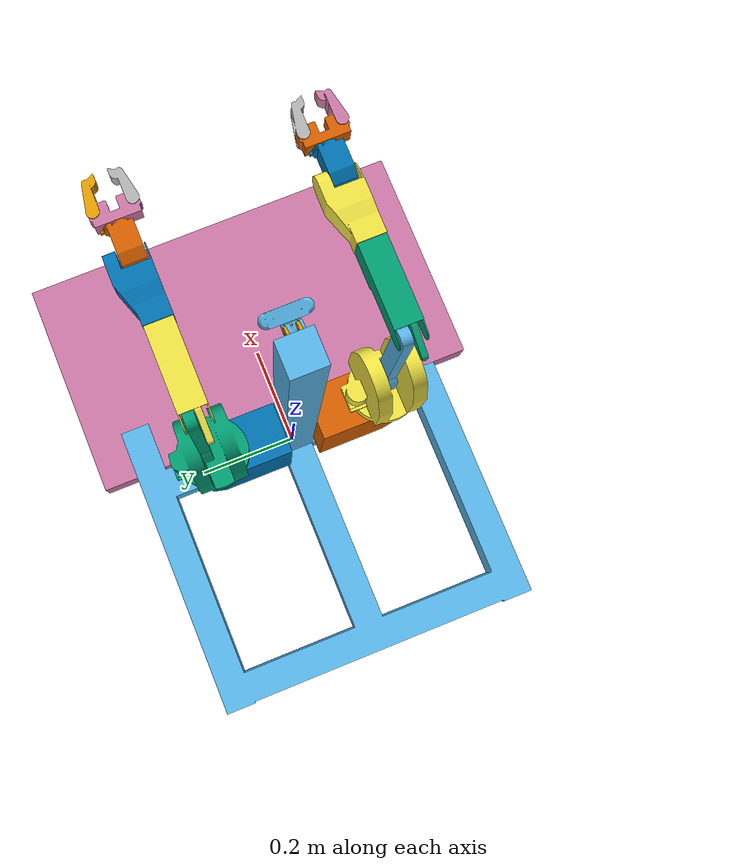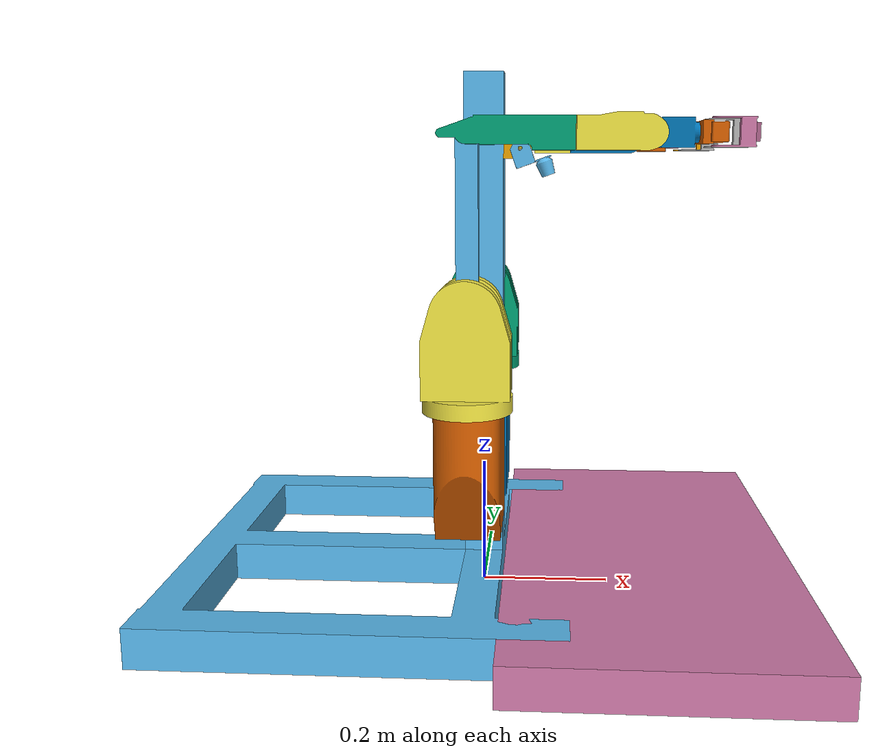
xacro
<?xml version="1.0" ?>
<robot name="kohaku_dualarm" xmlns:xacro="http://www.ros.org/wiki/xacro">

<xacro:property name="camera_angle" value="1.23" />

<link name="world"/>
<joint name="world_to_base_link" type="fixed" >
  <parent link="world" />
  <child link="base_link" />
</joint>

<link name="base_link">
  <inertial>
    <origin xyz="-0.15079905348722558 0.002632253893124613 0.12091351070017117" rpy="0 0 0"/>
    <mass value="129.89853651459157"/>
    <inertia ixx="9.979542" iyy="9.36588" izz="9.520271" ixy="-0.046433" iyz="-0.02707" ixz="-1.764444"/>
  </inertial>
  <visual>
    <origin xyz="0 0 0" rpy="0 0 0"/>
    <geometry>
      <mesh filename="package://kohaku_description/meshes/base_link.stl" scale="0.001 0.001 0.001"/>
    </geometry>
    <material name="_"/>
  </visual>
  <collision>
    <origin xyz="0 0 0" rpy="0 0 0"/>
    <geometry>
      <mesh filename="package://kohaku_description/meshes/base_link.stl" scale="0.001 0.001 0.001"/>
    </geometry>
  </collision>
</link>

<link name="left_upperarm_link">
  <inertial>
    <origin xyz="5.075907070683193e-05 0.0055551687418621265 0.06093355009099832" rpy="0 0 0"/>
    <mass value="1.6464184320412805"/>
    <inertia ixx="0.012435" iyy="0.01254" izz="0.000862" ixy="2e-06" iyz="-0.000385" ixz="5e-06"/>
  </inertial>
  <visual>
    <origin xyz="0.015 -0.16498 -0.502019" rpy="0 0 0"/>
    <geometry>
      <mesh filename="package://kohaku_description/meshes/left_upperarm_link_1.stl" scale="0.001 0.001 0.001"/>
    </geometry>
    <material name="_"/>
  </visual>
  <collision>
    <origin xyz="0.015 -0.16498 -0.502019" rpy="0 0 0"/>
    <geometry>
      <mesh filename="package://kohaku_description/meshes/left_upperarm_link_1.stl" scale="0.001 0.001 0.001"/>
    </geometry>
  </collision>
</link>

<link name="left_forearm_link">
  <inertial>
    <origin xyz="-0.0028629714869261927 -0.0029849490325699057 0.0665229146241868" rpy="0 0 0"/>
    <mass value="0.5147558278242914"/>
    <inertia ixx="0.001435" iyy="0.001418" izz="0.000194" ixy="1e-06" iyz="-5.7e-05" ixz="-4.1e-05"/>
  </inertial>
  <visual>
    <origin xyz="0.015 -0.164945 -0.752019" rpy="0 0 0"/>
    <geometry>
      <mesh filename="package://kohaku_description/meshes/left_forearm_link_1.stl" scale="0.001 0.001 0.001"/>
    </geometry>
    <material name="_"/>
  </visual>
  <collision>
    <origin xyz="0.015 -0.164945 -0.752019" rpy="0 0 0"/>
    <geometry>
      <mesh filename="package://kohaku_description/meshes/left_forearm_link_1.stl" scale="0.001 0.001 0.001"/>
    </geometry>
  </collision>
</link>

<link name="left_wrist_yaw_link">
  <inertial>
    <origin xyz="-0.0012123899494678285 0.00799629493788756 0.05493382214308451" rpy="0 0 0"/>
    <mass value="1.0197481013710548"/>
    <inertia ixx="0.001319" iyy="0.001172" izz="0.000585" ixy="7e-06" iyz="-0.000192" ixz="2.4e-05"/>
  </inertial>
  <visual>
    <origin xyz="0.015 -0.164874 -0.902019" rpy="0 0 0"/>
    <geometry>
      <mesh filename="package://kohaku_description/meshes/left_wrist_yaw_link_1.stl" scale="0.001 0.001 0.001"/>
    </geometry>
    <material name="_"/>
  </visual>
  <collision>
    <origin xyz="0.015 -0.164874 -0.902019" rpy="0 0 0"/>
    <geometry>
      <mesh filename="package://kohaku_description/meshes/left_wrist_yaw_link_1.stl" scale="0.001 0.001 0.001"/>
    </geometry>
  </collision>
</link>

<link name="left_wrist_pitch_link">
  <inertial>
    <origin xyz="4.65267917359076e-05 0.0005212096653225973 0.03002034855665814" rpy="0 0 0"/>
    <mass value="0.3895986537799301"/>
    <inertia ixx="0.000199" iyy="0.000188" izz="0.000103" ixy="-0.0" iyz="-6e-06" ixz="1e-06"/>
  </inertial>
  <visual>
    <origin xyz="0.015 -0.16486 -1.002019" rpy="0 0 0"/>
    <geometry>
      <mesh filename="package://kohaku_description/meshes/left_wrist_pitch_link_1.stl" scale="0.001 0.001 0.001"/>
    </geometry>
    <material name="_"/>
  </visual>
  <collision>
    <origin xyz="0.015 -0.16486 -1.002019" rpy="0 0 0"/>
    <geometry>
      <mesh filename="package://kohaku_description/meshes/left_wrist_pitch_link_1.stl" scale="0.001 0.001 0.001"/>
    </geometry>
  </collision>
</link>

<link name="left_hand_palm_link">
  <inertial>
    <origin xyz="0.0002318570856491807 -6.828401333128231e-05 0.017667823933595006" rpy="0 0 0"/>
    <mass value="0.32135536491616284"/>
    <inertia ixx="0.000221" iyy="5.4e-05" izz="0.000213" ixy="-0.0" iyz="-0.0" ixz="-0.0"/>
  </inertial>
  <visual>
    <origin xyz="0.015 -0.164851 -1.067019" rpy="0 0 0"/>
    <geometry>
      <mesh filename="package://kohaku_description/meshes/left_hand_palm_link_1.stl" scale="0.001 0.001 0.001"/>
    </geometry>
    <material name="_"/>
  </visual>
  <collision>
    <origin xyz="0.015 -0.164851 -1.067019" rpy="0 0 0"/>
    <geometry>
      <mesh filename="package://kohaku_description/meshes/left_hand_palm_link_1.stl" scale="0.001 0.001 0.001"/>
    </geometry>
  </collision>
</link>

<link name="left_r_finger_link">
  <inertial>
    <origin xyz="0.00015745354838760627 0.006862307384075728 0.03618445014614924" rpy="0 0 0"/>
    <mass value="0.07719980680600205"/>
    <inertia ixx="2e-05" iyy="2.8e-05" izz="1.5e-05" ixy="0.0" iyz="-4e-06" ixz="0.0"/>
  </inertial>
  <visual>
    <origin xyz="0.015 -0.133848 -1.089074" rpy="0 0 0"/>
    <geometry>
      <mesh filename="package://kohaku_description/meshes/left_r_finger_link_1.stl" scale="0.001 0.001 0.001"/>
    </geometry>
    <material name="_"/>
  </visual>
  <collision>
    <origin xyz="0.015 -0.133848 -1.089074" rpy="0 0 0"/>
    <geometry>
      <mesh filename="package://kohaku_description/meshes/left_r_finger_link_1.stl" scale="0.001 0.001 0.001"/>
    </geometry>
  </collision>
</link>

<link name="left_l_finger_link">
  <inertial>
    <origin xyz="-0.00015745364544006435 -0.006872074383145355 0.03618219144765589" rpy="0 0 0"/>
    <mass value="0.07719980680600244"/>
    <inertia ixx="2e-05" iyy="2.8e-05" izz="1.5e-05" ixy="0.0" iyz="4e-06" ixz="-0.0"/>
  </inertial>
  <visual>
    <origin xyz="0.015 -0.195848 -1.089083" rpy="0 0 0"/>
    <geometry>
      <mesh filename="package://kohaku_description/meshes/left_l_finger_link_1.stl" scale="0.001 0.001 0.001"/>
    </geometry>
    <material name="_"/>
  </visual>
  <collision>
    <origin xyz="0.015 -0.195848 -1.089083" rpy="0 0 0"/>
    <geometry>
      <mesh filename="package://kohaku_description/meshes/left_l_finger_link_1.stl" scale="0.001 0.001 0.001"/>
    </geometry>
  </collision>
</link>

<link name="right_upperarm_link">
  <inertial>
    <origin xyz="6.28442313096618e-05 0.006835763049751115 0.07545195310129493" rpy="0 0 0"/>
    <mass value="1.3298060603996433"/>
    <inertia ixx="0.010625" iyy="0.010715" izz="0.000507" ixy="2e-06" iyz="-0.000257" ixz="6e-06"/>
  </inertial>
  <visual>
    <origin xyz="0.015 0.165 -0.502" rpy="0 0 0"/>
    <geometry>
      <mesh filename="package://kohaku_description/meshes/right_upperarm_link_1.stl" scale="0.001 0.001 0.001"/>
    </geometry>
    <material name="_"/>
  </visual>
  <collision>
    <origin xyz="0.015 0.165 -0.502" rpy="0 0 0"/>
    <geometry>
      <mesh filename="package://kohaku_description/meshes/right_upperarm_link_1.stl" scale="0.001 0.001 0.001"/>
    </geometry>
  </collision>
</link>

<link name="right_forearm_link">
  <inertial>
    <origin xyz="-0.002862922182678501 -0.002976875459199807 0.06652323644658864" rpy="0 0 0"/>
    <mass value="0.5147646926800391"/>
    <inertia ixx="0.001435" iyy="0.001418" izz="0.000194" ixy="1e-06" iyz="-5.7e-05" ixz="-4.1e-05"/>
  </inertial>
  <visual>
    <origin xyz="0.015 0.165 -0.752" rpy="0 0 0"/>
    <geometry>
      <mesh filename="package://kohaku_description/meshes/right_forearm_link_1.stl" scale="0.001 0.001 0.001"/>
    </geometry>
    <material name="_"/>
  </visual>
  <collision>
    <origin xyz="0.015 0.165 -0.752" rpy="0 0 0"/>
    <geometry>
      <mesh filename="package://kohaku_description/meshes/right_forearm_link_1.stl" scale="0.001 0.001 0.001"/>
    </geometry>
  </collision>
</link>

<link name="right_wrist_yaw_link">
  <inertial>
    <origin xyz="-0.0012077095485982584 0.008005720369017338 0.0550085391055799" rpy="0 0 0"/>
    <mass value="1.0237000713299513"/>
    <inertia ixx="0.001322" iyy="0.001173" izz="0.000586" ixy="7e-06" iyz="-0.000192" ixz="2.4e-05"/>
  </inertial>
  <visual>
    <origin xyz="0.015 0.16505 -0.902" rpy="0 0 0"/>
    <geometry>
      <mesh filename="package://kohaku_description/meshes/right_wrist_yaw_link_1.stl" scale="0.001 0.001 0.001"/>
    </geometry>
    <material name="_"/>
  </visual>
  <collision>
    <origin xyz="0.015 0.16505 -0.902" rpy="0 0 0"/>
    <geometry>
      <mesh filename="package://kohaku_description/meshes/right_wrist_yaw_link_1.stl" scale="0.001 0.001 0.001"/>
    </geometry>
  </collision>
</link>

<link name="right_wrist_pitch_link">
  <inertial>
    <origin xyz="4.661107241576458e-05 0.0005260238582204257 0.030027676943425563" rpy="0 0 0"/>
    <mass value="0.3888941704743227"/>
    <inertia ixx="0.000199" iyy="0.000188" izz="0.000103" ixy="-0.0" iyz="-6e-06" ixz="1e-06"/>
  </inertial>
  <visual>
    <origin xyz="0.015 0.16505 -1.002" rpy="0 0 0"/>
    <geometry>
      <mesh filename="package://kohaku_description/meshes/right_wrist_pitch_link_1.stl" scale="0.001 0.001 0.001"/>
    </geometry>
    <material name="_"/>
  </visual>
  <collision>
    <origin xyz="0.015 0.16505 -1.002" rpy="0 0 0"/>
    <geometry>
      <mesh filename="package://kohaku_description/meshes/right_wrist_pitch_link_1.stl" scale="0.001 0.001 0.001"/>
    </geometry>
  </collision>
</link>

<link name="right_hand_palm_link">
  <inertial>
    <origin xyz="-2.2188362258646066e-11 -6.708764863327943e-05 0.017600327592202314" rpy="0 0 0"/>
    <mass value="0.3164695600213004"/>
    <inertia ixx="0.000216" iyy="5.3e-05" izz="0.000207" ixy="-0.0" iyz="-0.0" ixz="0.0"/>
  </inertial>
  <visual>
    <origin xyz="0.015 0.16505 -1.067" rpy="0 0 0"/>
    <geometry>
      <mesh filename="package://kohaku_description/meshes/right_hand_palm_link_1.stl" scale="0.001 0.001 0.001"/>
    </geometry>
    <material name="_"/>
  </visual>
  <collision>
    <origin xyz="0.015 0.16505 -1.067" rpy="0 0 0"/>
    <geometry>
      <mesh filename="package://kohaku_description/meshes/right_hand_palm_link_1.stl" scale="0.001 0.001 0.001"/>
    </geometry>
  </collision>
</link>

<link name="right_r_finger_link">
  <inertial>
    <origin xyz="0.0001574535453947555 0.006867190642168924 0.03618311934404739" rpy="0 0 0"/>
    <mass value="0.07719980680600211"/>
    <inertia ixx="2e-05" iyy="2.8e-05" izz="1.5e-05" ixy="0.0" iyz="-4e-06" ixz="0.0"/>
  </inertial>
  <visual>
    <origin xyz="0.015 0.19605 -1.08906" rpy="0 0 0"/>
    <geometry>
      <mesh filename="package://kohaku_description/meshes/right_r_finger_link_1.stl" scale="0.001 0.001 0.001"/>
    </geometry>
    <material name="_"/>
  </visual>
  <collision>
    <origin xyz="0.015 0.19605 -1.08906" rpy="0 0 0"/>
    <geometry>
      <mesh filename="package://kohaku_description/meshes/right_r_finger_link_1.stl" scale="0.001 0.001 0.001"/>
    </geometry>
  </collision>
</link>

<link name="right_l_finger_link">
  <inertial>
    <origin xyz="-0.0001574536484330348 -0.006867190654270244 0.036183119343653924" rpy="0 0 0"/>
    <mass value="0.07719980680600211"/>
    <inertia ixx="2e-05" iyy="2.8e-05" izz="1.5e-05" ixy="0.0" iyz="4e-06" ixz="-0.0"/>
  </inertial>
  <visual>
    <origin xyz="0.015 0.13405 -1.08906" rpy="0 0 0"/>
    <geometry>
      <mesh filename="package://kohaku_description/meshes/right_l_finger_link_1.stl" scale="0.001 0.001 0.001"/>
    </geometry>
    <material name="_"/>
  </visual>
  <collision>
    <origin xyz="0.015 0.13405 -1.08906" rpy="0 0 0"/>
    <geometry>
      <mesh filename="package://kohaku_description/meshes/right_l_finger_link_1.stl" scale="0.001 0.001 0.001"/>
    </geometry>
  </collision>
</link>

<link name="camera_base">
  <inertial>
    <origin xyz="0.016950029688606393 -0.00716311606080537 0.0018584699632485657" rpy="0 0 0"/>
    <mass value="0.14882356320498133"/>
    <inertia ixx="5.6e-05" iyy="2.9e-05" izz="6e-05" ixy="9e-06" iyz="9e-06" ixz="-2e-06"/>
  </inertial>
  <visual>
    <origin xyz="-0.03 -0.015 -0.795" rpy="0 0 0"/>
    <geometry>
      <mesh filename="package://kohaku_description/meshes/camera_base_1.stl" scale="0.001 0.001 0.001"/>
    </geometry>
    <material name="_"/>
  </visual>
  <collision>
    <origin xyz="-0.03 -0.015 -0.795" rpy="0 0 0"/>
    <geometry>
      <mesh filename="package://kohaku_description/meshes/camera_base_1.stl" scale="0.001 0.001 0.001"/>
    </geometry>
  </collision>
</link>

<link name="camera_jig_link">
  <inertial>
    <origin xyz="0.03422834270251631 0.010320547163566337 0.022530793104373115" rpy="0 0 0"/>
    <mass value="0.6223531709069755"/>
    <inertia ixx="0.000405" iyy="0.000203" izz="0.00041" ixy="-3e-06" iyz="-3e-06" ixz="-6.7e-05"/>
  </inertial>
  <visual>
    <origin xyz="-0.055 -0.0045 -0.795" rpy="0 0 0"/>
    <geometry>
      <mesh filename="package://kohaku_description/meshes/camera_link_1.stl" scale="0.001 0.001 0.001"/>
    </geometry>
    <material name="_"/>
  </visual>
  <collision>
    <origin xyz="-0.055 -0.0045 -0.795" rpy="0 0 0"/>
    <geometry>
      <mesh filename="package://kohaku_description/meshes/camera_link_1.stl" scale="0.001 0.001 0.001"/>
    </geometry>
  </collision>
</link>

<link name="left_shoulder_link">
  <inertial>
    <origin xyz="-0.0002483716377100001 0.002599957397357383 0.07656293547299953" rpy="0 0 0"/>
    <mass value="4.599230696027372"/>
    <inertia ixx="0.018029" iyy="0.017921" izz="0.01062" ixy="3.5e-05" iyz="0.000417" ixz="2.8e-05"/>
  </inertial>
  <visual>
    <origin xyz="0.015 -0.165 -0.360019" rpy="0 0 0"/>
    <geometry>
      <mesh filename="package://kohaku_description/meshes/left_shoulder_link_1.stl" scale="0.001 0.001 0.001"/>
    </geometry>
    <material name="_"/>
  </visual>
  <collision>
    <origin xyz="0.015 -0.165 -0.360019" rpy="0 0 0"/>
    <geometry>
      <mesh filename="package://kohaku_description/meshes/left_shoulder_link_1.stl" scale="0.001 0.001 0.001"/>
    </geometry>
  </collision>
</link>

<link name="right_shoulder_link">
  <inertial>
    <origin xyz="-0.00024954454442560267 0.0026120260106482773 0.07656295525588974" rpy="0 0 0"/>
    <mass value="4.5990809553104635"/>
    <inertia ixx="0.018029" iyy="0.017921" izz="0.010619" ixy="3.5e-05" iyz="0.000416" ixz="2.8e-05"/>
  </inertial>
  <visual>
    <origin xyz="0.015 0.165 -0.36" rpy="0 0 0"/>
    <geometry>
      <mesh filename="package://kohaku_description/meshes/right_shoulder_link_1.stl" scale="0.001 0.001 0.001"/>
    </geometry>
    <material name="_"/>
  </visual>
  <collision>
    <origin xyz="0.015 0.165 -0.36" rpy="0 0 0"/>
    <geometry>
      <mesh filename="package://kohaku_description/meshes/right_shoulder_link_1.stl" scale="0.001 0.001 0.001"/>
    </geometry>
  </collision>
</link>

<link name="left_base_frame">
  <inertial>
    <origin xyz="-0.048104095750049355 0.08571557516681824 -0.09306512049076127" rpy="0 0 0"/>
    <mass value="25.99551418429674"/>
    <inertia ixx="0.146903" iyy="0.101347" izz="0.086479" ixy="-9.9e-05" iyz="-0.009456" ixz="-8.9e-05"/>
  </inertial>
  <visual>
    <origin xyz="-0.033 -0.031 -0.36" rpy="0 0 0"/>
    <geometry>
      <mesh filename="package://kohaku_description/meshes/left_base_frame_1.stl" scale="0.001 0.001 0.001"/>
    </geometry>
    <material name="_"/>
  </visual>
  <collision>
    <origin xyz="-0.033 -0.031 -0.36" rpy="0 0 0"/>
    <geometry>
      <mesh filename="package://kohaku_description/meshes/left_base_frame_1.stl" scale="0.001 0.001 0.001"/>
    </geometry>
  </collision>
</link>

<link name="right_base_frame">
  <inertial>
    <origin xyz="-0.047895235127222845 -0.08570427691041646 -0.09307497415651689" rpy="0 0 0"/>
    <mass value="25.99675882675514"/>
    <inertia ixx="0.146909" iyy="0.101349" izz="0.086487" ixy="-9.9e-05" iyz="0.00946" ixz="8.9e-05"/>
  </inertial>
  <visual>
    <origin xyz="-0.033 0.031 -0.36" rpy="0 0 0"/>
    <geometry>
      <mesh filename="package://kohaku_description/meshes/right_base_frame_1.stl" scale="0.001 0.001 0.001"/>
    </geometry>
    <material name="_"/>
  </visual>
  <collision>
    <origin xyz="-0.033 0.031 -0.36" rpy="0 0 0"/>
    <geometry>
      <mesh filename="package://kohaku_description/meshes/right_base_frame_1.stl" scale="0.001 0.001 0.001"/>
    </geometry>
  </collision>
</link>

<joint name="left_arm_fix" type="fixed">
  <origin xyz="0.033 0.031 0.326" rpy="0 0 0"/>
  <parent link="base_link"/>
  <child link="left_base_frame"/>
</joint>

<joint name="left_shoulder_yaw" type="revolute">
  <origin xyz="-0.048 0.134 1.9e-05" rpy="0 0 0"/>
  <parent link="left_base_frame"/>
  <child link="left_shoulder_link"/>
  <axis xyz="0.0 -0.00014 1.0"/>
  <limit upper="2.792527" lower="-0.872665" effort="100" velocity="100"/>
</joint>

<joint name="left_shoulder_pitch" type="revolute">
  <origin xyz="0.0 -2e-05 0.142" rpy="0 0 0"/>
  <parent link="left_shoulder_link"/>
  <child link="left_upperarm_link"/>
  <axis xyz="-0.0 1.0 0.00014"/>
  <limit upper="1.832" lower="-0.785" effort="100" velocity="100"/>
</joint>

<joint name="left_elbow_pitch" type="revolute">
  <origin xyz="0.0 -3.5e-05 0.25" rpy="0 0 0"/>
  <parent link="left_upperarm_link"/>
  <child link="left_forearm_link"/>
  <axis xyz="-0.0 1.0 0.00014"/>
  <limit upper="2.705" lower="0.436" effort="100" velocity="100"/>
</joint>

<joint name="left_wrist_yaw" type="revolute">
  <origin xyz="0.0 -7.1e-05 0.15" rpy="0 0 0"/>
  <parent link="left_forearm_link"/>
  <child link="left_wrist_yaw_link"/>
  <axis xyz="0.0 -0.00014 1.0"/>
  <limit upper="2.094" lower="-2.094" effort="100" velocity="100"/>
</joint>

<joint name="left_wrist_pitch" type="revolute">
  <origin xyz="0.0 -1.4e-05 0.1" rpy="0 0 0"/>
  <parent link="left_wrist_yaw_link"/>
  <child link="left_wrist_pitch_link"/>
  <axis xyz="-0.0 1.0 0.00014"/>
  <limit upper="1.047" lower="-1.047" effort="100" velocity="100"/>
</joint>

<joint name="left_hand_yaw" type="revolute">
  <origin xyz="0.0 -9e-06 0.065" rpy="0 0 0"/>
  <parent link="left_wrist_pitch_link"/>
  <child link="left_hand_palm_link"/>
  <axis xyz="-0.0 -0.00014 1.0"/>
  <limit upper="2.967" lower="-2.967" effort="100" velocity="100"/>
</joint>

<joint name="left_r_finger_joint" type="revolute">
  <origin xyz="0.0 -0.031003 0.022055" rpy="0 0 0"/>
  <parent link="left_hand_palm_link"/>
  <child link="left_r_finger_link"/>
  <axis xyz="1.0 0.0 0.0"/>
  <limit upper="1.57" lower="-0.198" effort="100" velocity="100"/>
</joint>

<joint name="left_l_finger_joint" type="revolute">
  <origin xyz="0.0 0.030997 0.022064" rpy="0 0 0"/>
  <parent link="left_hand_palm_link"/>
  <child link="left_l_finger_link"/>
  <axis xyz="-1.0 -0.0 -0.0"/>
  <limit upper="1.57" lower="-0.198" effort="100" velocity="100"/>
</joint>

<joint name="right_arm_fix" type="fixed">
  <origin xyz="0.033 -0.031 0.326" rpy="0 0 0"/>
  <parent link="base_link"/>
  <child link="right_base_frame"/>
</joint>

<joint name="right_shoulder_yaw" type="revolute">
  <origin xyz="-0.048 -0.134 0.0" rpy="0 0 0"/>
  <parent link="right_base_frame"/>
  <child link="right_shoulder_link"/>
  <axis xyz="0.0 -0.0 1.0"/>
  <limit upper="0.872" lower="-2.792" effort="100" velocity="100"/>
</joint>

<joint name="right_shoulder_pitch" type="revolute">
  <origin xyz="0.0 0.0 0.142" rpy="0 0 0"/>
  <parent link="right_shoulder_link"/>
  <child link="right_upperarm_link"/>
  <axis xyz="0.0 1.0 0.0"/>
  <limit upper="1.832" lower="-0.785" effort="100" velocity="100"/>
</joint>

<joint name="right_elbow_pitch" type="revolute">
  <origin xyz="0.0 0.0 0.25" rpy="0 0 0"/>
  <parent link="right_upperarm_link"/>
  <child link="right_forearm_link"/>
  <axis xyz="0.0 1.0 0.0"/>
  <limit upper="2.705" lower="0.436" effort="100" velocity="100"/>
</joint>

<joint name="right_wrist_yaw" type="revolute">
  <origin xyz="0.0 -5e-05 0.15" rpy="0 0 0"/>
  <parent link="right_forearm_link"/>
  <child link="right_wrist_yaw_link"/>
  <axis xyz="0.0 0.0 1.0"/>
  <limit upper="2.094" lower="-2.094" effort="100" velocity="100"/>
</joint>

<joint name="right_wrist_pitch" type="revolute">
  <origin xyz="0.0 0.0 0.1" rpy="0 0 0"/>
  <parent link="right_wrist_yaw_link"/>
  <child link="right_wrist_pitch_link"/>
  <axis xyz="-0.0 1.0 0.0"/>
  <limit upper="1.047" lower="-1.047" effort="100" velocity="100"/>
</joint>

<joint name="right_hand_yaw" type="revolute">
  <origin xyz="0.0 0.0 0.065" rpy="0 0 0"/>
  <parent link="right_wrist_pitch_link"/>
  <child link="right_hand_palm_link"/>
  <axis xyz="-0.0 0.0 1.0"/>
  <limit upper="2.967" lower="-2.967" effort="100" velocity="100"/>
</joint>

<joint name="right_r_finger_joint" type="revolute">
  <origin xyz="0.0 -0.031 0.02206" rpy="0 0 0"/>
  <parent link="right_hand_palm_link"/>
  <child link="right_r_finger_link"/>
  <axis xyz="1.0 0.0 0.0"/>
  <limit upper="1.57" lower="-0.198" effort="100" velocity="100"/>
</joint>

<joint name="right_l_finger_joint" type="revolute">
  <origin xyz="0.0 0.031 0.02206" rpy="0 0 0"/>
  <parent link="right_hand_palm_link"/>
  <child link="right_l_finger_link"/>
  <axis xyz="-1.0 -0.0 -0.0"/>
  <limit upper="1.57" lower="-0.198" effort="100" velocity="100"/>
</joint>

<joint name="camera_base_fix" type="fixed">
  <origin xyz="0.03 -0.015 0.7" rpy="0 0 0"/>
  <parent link="base_link"/>
  <child link="camera_base"/>
</joint>

<joint name="camera_link_jig_fix" type="fixed">
  <origin xyz="0.025 -0.0105 0.0" rpy="0 ${camera_angle} 0"/>
  <parent link="camera_base"/>
  <child link="camera_jig_link"/>
</joint>

<link name="workspace">
  <visual>
    <geometry>
      <box size="0.45 0.80 0.06" />
    </geometry>
  </visual>
  <collision>
    <geometry>
      <box size="0.45 0.80 0.06" />
    </geometry>
  </collision>
</link>
<joint name="base_link_to_workspace" type="fixed" >
  <parent link="base_link" />
  <child  link="workspace" />
  <origin xyz="0.26 0.0 0.03" rpy="0 0 0"/>
</joint>
<gazebo reference="workspace">
  <visual><material>
    <ambient>0.5 0.5 0.5 1</ambient>
    <diffuse>0.5 0.5 0.5 1</diffuse>
    <emmisive>0.2 0.2 0.2 1</emmisive>
  </material></visual>
</gazebo>
</robot>
